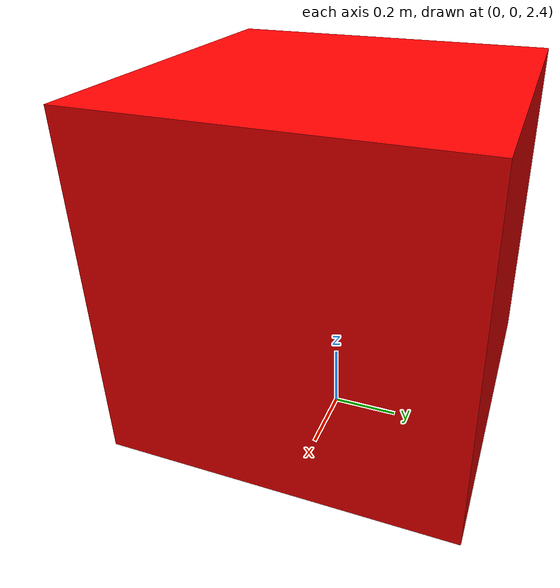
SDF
<?xml version="1.0" ?>
<sdf version="1.6">
<model name="overhead_depth_camera">
  <link name="camera_link">
    <pose>0 0 3 0 0 0</pose>
      <inertial>
        <mass>0.1</mass>
        <inertia>
          <ixx>0.000166667</ixx>
          <iyy>0.000166667</iyy>
          <izz>0.000166667</izz>
        </inertia>
      </inertial>
      <collision name="collision">
        <geometry>
          <box>
            <size>1 1 1</size>
          </box>
        </geometry>
      </collision>
      <visual name="visual">
        <geometry>
          <box>
            <size>1 1 1</size>
          </box>
        </geometry>
        <material>
            <ambient>1 0 0 1</ambient>
            <diffuse>1 0 0 1</diffuse>
            <specular>0.1 0.1 0.1 1</specular>
            <emissive>0 0 0 0</emissive>
        </material>
      </visual>

    <sensor type="depth" name="camera1">
        <always_on>1</always_on>
        <update_rate>20.0</update_rate>
        <visualize>true</visualize>
        <camera>
            <horizontal_fov>1.5707</horizontal_fov>
            <image>
                <width>640</width>
                <height>480</height>
                <format>R8G8B8</format>
            </image>
            <depth_camera>
            </depth_camera>
            <clip>
                <near>0.1</near>
                <far>100</far>
            </clip>
        </camera>
        <plugin name="camera_controller" filename="libgazebo_ros_openni_kinect.so">
          <alwaysOn>true</alwaysOn>
          <updateRate>20.0</updateRate>
          <cameraName>camera</cameraName>
          <frameName>camera_link_optical</frameName>
          <imageTopicName>rgb/image_raw</imageTopicName>
          <depthImageTopicName>depth/image_raw</depthImageTopicName>
          <pointCloudTopicName>depth/points</pointCloudTopicName>
          <cameraInfoTopicName>rgb/camera_info</cameraInfoTopicName>
          <depthImageCameraInfoTopicName>depth/camera_info</depthImageCameraInfoTopicName>
          <pointCloudCutoff>0.4</pointCloudCutoff>
          <pointCloudCutoffMax>7.0</pointCloudCutoffMax>
          <hackBaseline>0.07</hackBaseline>
          <distortionK1>0.0</distortionK1>
          <distortionK2>0.0</distortionK2>
          <distortionK3>0.0</distortionK3>
          <distortionT1>0.0</distortionT1>
          <distortionT2>0.0</distortionT2>
          <CxPrime>0.0</CxPrime>
          <Cx>0.0</Cx>
          <Cy>0.0</Cy>
          <focalLength>0.0</focalLength>
        </plugin>
    </sensor>
  </link>

  <static>1</static>
</model>
</sdf>
